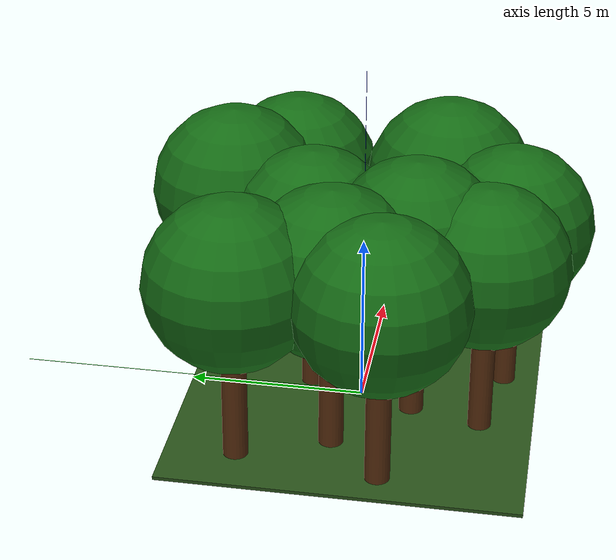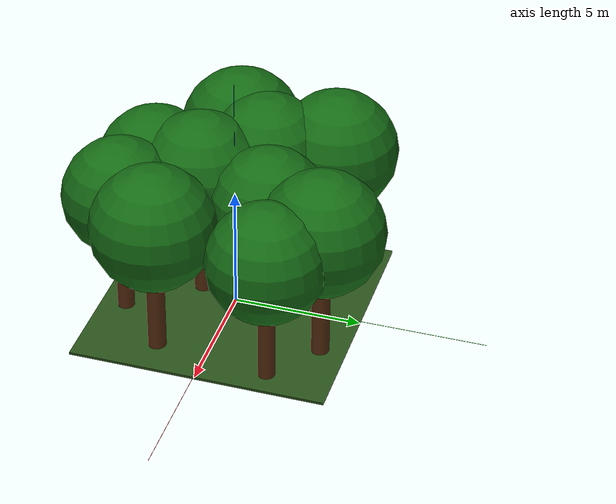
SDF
<sdf version="1.9">
 <world name="forest_10x10">
  <physics name="1ms" type="ignore">
   <max_step_size>0.001</max_step_size>
   <real_time_factor>1.0</real_time_factor>
  </physics>
  <plugin filename="gz-sim-physics-system" name="gz::sim::systems::Physics"/>
  <plugin filename="gz-sim-sensors-system" name="gz::sim::systems::Sensors">
   <render_engine>ogre2</render_engine>
  </plugin>
  <plugin filename="gz-sim-user-commands-system" name="gz::sim::systems::UserCommands"/>
  <plugin filename="gz-sim-scene-broadcaster-system" name="gz::sim::systems::SceneBroadcaster"/>
  <plugin filename="gz-sim-imu-system" name="gz::sim::systems::Imu"/>
  <plugin filename="gz-sim-navsat-system" name="gz::sim::systems::NavSat"/>
  <scene><ambient>1.0 1.0 1.0</ambient><background>0.8 0.8 0.8</background></scene>
  <spherical_coordinates>
   <latitude_deg>-35.363262</latitude_deg>
   <longitude_deg>149.165237</longitude_deg>
   <elevation>584</elevation>
   <heading_deg>0</heading_deg>
   <surface_model>EARTH_WGS84</surface_model>
  </spherical_coordinates>
  <light type="directional" name="sun">
   <pose>0 0 10 0 0 0</pose>
   <diffuse>0.8 0.8 0.8 1</diffuse>
   <specular>0.8 0.8 0.8 1</specular>
   <attenuation>
    <range>1000</range>
    <constant>0.9</constant>
    <linear>0.01</linear>
    <quadratic>0.001</quadratic>
   </attenuation>
   <direction>-0.5 0.1 -0.9</direction>
  </light>
  <model name="axes">
   <static>1</static>
   <link name="link">
    <visual name="r">
     <cast_shadows>0</cast_shadows>
     <pose>5 0 0.1 0 0 0</pose>
     <geometry><box><size>10 0.01 0.01</size></box></geometry>
     <material>
      <ambient>1 0 0 0.8</ambient>
      <diffuse>1 0 0 0.8</diffuse>
      <emissive>1 0 0 0.8</emissive>
      <specular>0.5 0.5 0.5 0.8</specular>
     </material>
    </visual>
    <visual name="g">
     <cast_shadows>0</cast_shadows>
     <pose>0 5 0.1 0 0 0</pose>
     <geometry><box><size>0.01 10 0.01</size></box></geometry>
     <material>
      <ambient>0 1 0 0.8</ambient>
      <diffuse>0 1 0 0.8</diffuse>
      <emissive>0 1 0 0.8</emissive>
      <specular>0.5 0.5 0.5 0.8</specular>
     </material>
    </visual>
    <visual name="b">
     <cast_shadows>0</cast_shadows>
     <pose>0 0 5.1 0 0 0</pose>
     <geometry><box><size>0.01 0.01 10</size></box></geometry>
     <material>
      <ambient>0 0 1 0.8</ambient>
      <diffuse>0 0 1 0.8</diffuse>
      <emissive>0 0 1 0.8</emissive>
      <specular>0.5 0.5 0.5 0.8</specular>
     </material>
    </visual>
    <sensor name="navsat_sensor" type="navsat"><always_on>1</always_on><update_rate>1</update_rate></sensor>
   </link>
  </model>
  <model name="ground">
   <static>true</static>
   <pose>0 0 -0.05 0 0 0</pose>
   <link name="link">
    <collision name="c"><geometry><box><size>10 10 0.1</size></box></geometry></collision>
    <visual name="v">
     <geometry><box><size>10 10 0.1</size></box></geometry>
     <material><ambient>0.16 0.32 0.10 1</ambient><diffuse>0.16 0.32 0.10 1</diffuse></material>
    </visual>
   </link>
  </model>
  <model name="tree_01">
   <static>true</static>
   <pose>-3.5 3.0 0 0 0 0</pose>
   <link name="link">
    <collision name="tc">
     <pose>0 0 2.00 0 0 0</pose>
     <geometry><cylinder><radius>0.35</radius><length>4.00</length></cylinder></geometry>
    </collision>
    <visual name="tv">
     <pose>0 0 2.00 0 0 0</pose>
     <geometry><cylinder><radius>0.35</radius><length>4.00</length></cylinder></geometry>
     <material><ambient>0.30 0.15 0.05 1</ambient><diffuse>0.35 0.18 0.06 1</diffuse></material>
    </visual>
    <collision name="cc">
     <pose>0 0 5.40 0 0 0</pose>
     <geometry><sphere><radius>2.40</radius></sphere></geometry>
    </collision>
    <visual name="cv">
     <pose>0 0 5.40 0 0 0</pose>
     <geometry><sphere><radius>2.40</radius></sphere></geometry>
     <material><ambient>0.05 0.28 0.05 1</ambient><diffuse>0.08 0.42 0.08 1</diffuse></material>
    </visual>
   </link>
  </model>
  <model name="tree_02">
   <static>true</static>
   <pose>2.0 4.0 0 0 0 0</pose>
   <link name="link">
    <collision name="tc">
     <pose>0 0 2.00 0 0 0</pose>
     <geometry><cylinder><radius>0.35</radius><length>4.00</length></cylinder></geometry>
    </collision>
    <visual name="tv">
     <pose>0 0 2.00 0 0 0</pose>
     <geometry><cylinder><radius>0.35</radius><length>4.00</length></cylinder></geometry>
     <material><ambient>0.30 0.15 0.05 1</ambient><diffuse>0.35 0.18 0.06 1</diffuse></material>
    </visual>
    <collision name="cc">
     <pose>0 0 5.40 0 0 0</pose>
     <geometry><sphere><radius>2.40</radius></sphere></geometry>
    </collision>
    <visual name="cv">
     <pose>0 0 5.40 0 0 0</pose>
     <geometry><sphere><radius>2.40</radius></sphere></geometry>
     <material><ambient>0.05 0.28 0.05 1</ambient><diffuse>0.08 0.42 0.08 1</diffuse></material>
    </visual>
   </link>
  </model>
  <model name="tree_03">
   <static>true</static>
   <pose>-1.0 -3.5 0 0 0 0</pose>
   <link name="link">
    <collision name="tc">
     <pose>0 0 1.90 0 0 0</pose>
     <geometry><cylinder><radius>0.33</radius><length>3.80</length></cylinder></geometry>
    </collision>
    <visual name="tv">
     <pose>0 0 1.90 0 0 0</pose>
     <geometry><cylinder><radius>0.33</radius><length>3.80</length></cylinder></geometry>
     <material><ambient>0.30 0.15 0.05 1</ambient><diffuse>0.35 0.18 0.06 1</diffuse></material>
    </visual>
    <collision name="cc">
     <pose>0 0 5.13 0 0 0</pose>
     <geometry><sphere><radius>2.28</radius></sphere></geometry>
    </collision>
    <visual name="cv">
     <pose>0 0 5.13 0 0 0</pose>
     <geometry><sphere><radius>2.28</radius></sphere></geometry>
     <material><ambient>0.05 0.28 0.05 1</ambient><diffuse>0.08 0.42 0.08 1</diffuse></material>
    </visual>
   </link>
  </model>
  <model name="tree_04">
   <static>true</static>
   <pose>3.5 -2.0 0 0 0 0</pose>
   <link name="link">
    <collision name="tc">
     <pose>0 0 2.00 0 0 0</pose>
     <geometry><cylinder><radius>0.35</radius><length>4.00</length></cylinder></geometry>
    </collision>
    <visual name="tv">
     <pose>0 0 2.00 0 0 0</pose>
     <geometry><cylinder><radius>0.35</radius><length>4.00</length></cylinder></geometry>
     <material><ambient>0.30 0.15 0.05 1</ambient><diffuse>0.35 0.18 0.06 1</diffuse></material>
    </visual>
    <collision name="cc">
     <pose>0 0 5.40 0 0 0</pose>
     <geometry><sphere><radius>2.40</radius></sphere></geometry>
    </collision>
    <visual name="cv">
     <pose>0 0 5.40 0 0 0</pose>
     <geometry><sphere><radius>2.40</radius></sphere></geometry>
     <material><ambient>0.05 0.28 0.05 1</ambient><diffuse>0.08 0.42 0.08 1</diffuse></material>
    </visual>
   </link>
  </model>
  <model name="tree_05">
   <static>true</static>
   <pose>0.5 1.5 0 0 0 0</pose>
   <link name="link">
    <collision name="tc">
     <pose>0 0 1.90 0 0 0</pose>
     <geometry><cylinder><radius>0.33</radius><length>3.80</length></cylinder></geometry>
    </collision>
    <visual name="tv">
     <pose>0 0 1.90 0 0 0</pose>
     <geometry><cylinder><radius>0.33</radius><length>3.80</length></cylinder></geometry>
     <material><ambient>0.30 0.15 0.05 1</ambient><diffuse>0.35 0.18 0.06 1</diffuse></material>
    </visual>
    <collision name="cc">
     <pose>0 0 5.13 0 0 0</pose>
     <geometry><sphere><radius>2.28</radius></sphere></geometry>
    </collision>
    <visual name="cv">
     <pose>0 0 5.13 0 0 0</pose>
     <geometry><sphere><radius>2.28</radius></sphere></geometry>
     <material><ambient>0.05 0.28 0.05 1</ambient><diffuse>0.08 0.42 0.08 1</diffuse></material>
    </visual>
   </link>
  </model>
  <model name="tree_06">
   <static>true</static>
   <pose>-4.0 -1.0 0 0 0 0</pose>
   <link name="link">
    <collision name="tc">
     <pose>0 0 2.00 0 0 0</pose>
     <geometry><cylinder><radius>0.35</radius><length>4.00</length></cylinder></geometry>
    </collision>
    <visual name="tv">
     <pose>0 0 2.00 0 0 0</pose>
     <geometry><cylinder><radius>0.35</radius><length>4.00</length></cylinder></geometry>
     <material><ambient>0.30 0.15 0.05 1</ambient><diffuse>0.35 0.18 0.06 1</diffuse></material>
    </visual>
    <collision name="cc">
     <pose>0 0 5.40 0 0 0</pose>
     <geometry><sphere><radius>2.40</radius></sphere></geometry>
    </collision>
    <visual name="cv">
     <pose>0 0 5.40 0 0 0</pose>
     <geometry><sphere><radius>2.40</radius></sphere></geometry>
     <material><ambient>0.05 0.28 0.05 1</ambient><diffuse>0.08 0.42 0.08 1</diffuse></material>
    </visual>
   </link>
  </model>
  <model name="tree_07">
   <static>true</static>
   <pose>1.5 -4.0 0 0 0 0</pose>
   <link name="link">
    <collision name="tc">
     <pose>0 0 1.90 0 0 0</pose>
     <geometry><cylinder><radius>0.33</radius><length>3.80</length></cylinder></geometry>
    </collision>
    <visual name="tv">
     <pose>0 0 1.90 0 0 0</pose>
     <geometry><cylinder><radius>0.33</radius><length>3.80</length></cylinder></geometry>
     <material><ambient>0.30 0.15 0.05 1</ambient><diffuse>0.35 0.18 0.06 1</diffuse></material>
    </visual>
    <collision name="cc">
     <pose>0 0 5.13 0 0 0</pose>
     <geometry><sphere><radius>2.28</radius></sphere></geometry>
    </collision>
    <visual name="cv">
     <pose>0 0 5.13 0 0 0</pose>
     <geometry><sphere><radius>2.28</radius></sphere></geometry>
     <material><ambient>0.05 0.28 0.05 1</ambient><diffuse>0.08 0.42 0.08 1</diffuse></material>
    </visual>
   </link>
  </model>
  <model name="tree_08">
   <static>true</static>
   <pose>-2.5 0.5 0 0 0 0</pose>
   <link name="link">
    <collision name="tc">
     <pose>0 0 2.00 0 0 0</pose>
     <geometry><cylinder><radius>0.35</radius><length>4.00</length></cylinder></geometry>
    </collision>
    <visual name="tv">
     <pose>0 0 2.00 0 0 0</pose>
     <geometry><cylinder><radius>0.35</radius><length>4.00</length></cylinder></geometry>
     <material><ambient>0.30 0.15 0.05 1</ambient><diffuse>0.35 0.18 0.06 1</diffuse></material>
    </visual>
    <collision name="cc">
     <pose>0 0 5.40 0 0 0</pose>
     <geometry><sphere><radius>2.40</radius></sphere></geometry>
    </collision>
    <visual name="cv">
     <pose>0 0 5.40 0 0 0</pose>
     <geometry><sphere><radius>2.40</radius></sphere></geometry>
     <material><ambient>0.05 0.28 0.05 1</ambient><diffuse>0.08 0.42 0.08 1</diffuse></material>
    </visual>
   </link>
  </model>
  <model name="tree_09">
   <static>true</static>
   <pose>4.0 2.5 0 0 0 0</pose>
   <link name="link">
    <collision name="tc">
     <pose>0 0 1.90 0 0 0</pose>
     <geometry><cylinder><radius>0.33</radius><length>3.80</length></cylinder></geometry>
    </collision>
    <visual name="tv">
     <pose>0 0 1.90 0 0 0</pose>
     <geometry><cylinder><radius>0.33</radius><length>3.80</length></cylinder></geometry>
     <material><ambient>0.30 0.15 0.05 1</ambient><diffuse>0.35 0.18 0.06 1</diffuse></material>
    </visual>
    <collision name="cc">
     <pose>0 0 5.13 0 0 0</pose>
     <geometry><sphere><radius>2.28</radius></sphere></geometry>
    </collision>
    <visual name="cv">
     <pose>0 0 5.13 0 0 0</pose>
     <geometry><sphere><radius>2.28</radius></sphere></geometry>
     <material><ambient>0.05 0.28 0.05 1</ambient><diffuse>0.08 0.42 0.08 1</diffuse></material>
    </visual>
   </link>
  </model>
  <model name="tree_10">
   <static>true</static>
   <pose>-0.5 -1.5 0 0 0 0</pose>
   <link name="link">
    <collision name="tc">
     <pose>0 0 2.00 0 0 0</pose>
     <geometry><cylinder><radius>0.35</radius><length>4.00</length></cylinder></geometry>
    </collision>
    <visual name="tv">
     <pose>0 0 2.00 0 0 0</pose>
     <geometry><cylinder><radius>0.35</radius><length>4.00</length></cylinder></geometry>
     <material><ambient>0.30 0.15 0.05 1</ambient><diffuse>0.35 0.18 0.06 1</diffuse></material>
    </visual>
    <collision name="cc">
     <pose>0 0 5.40 0 0 0</pose>
     <geometry><sphere><radius>2.40</radius></sphere></geometry>
    </collision>
    <visual name="cv">
     <pose>0 0 5.40 0 0 0</pose>
     <geometry><sphere><radius>2.40</radius></sphere></geometry>
     <material><ambient>0.05 0.28 0.05 1</ambient><diffuse>0.08 0.42 0.08 1</diffuse></material>
    </visual>
   </link>
  </model>
 </world>
</sdf>
